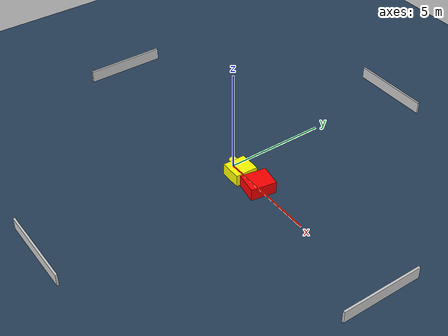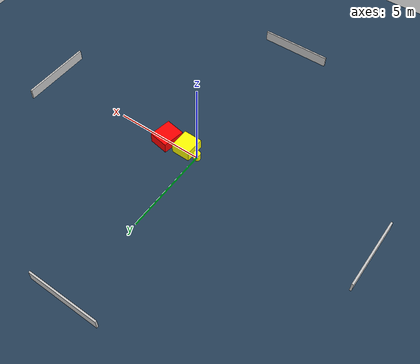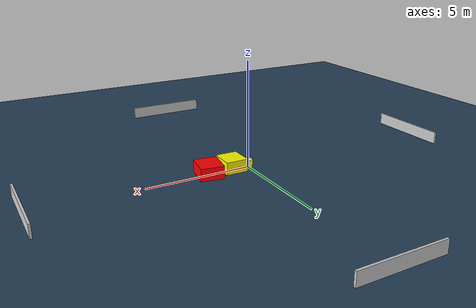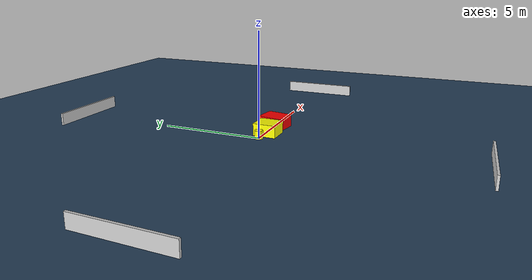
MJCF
<?xml version="1.0" ?>
<mujoco model="generated_environment">
  <option timestep="0.01" integrator="RK4" cone="elliptic"/>
  <default>
    <geom density="1"/>
  </default>
  <asset>
    <texture builtin="gradient" height="3072" name="skybox" rgb1="0.3 0.5 0.7" rgb2="0 0 0" type="skybox" width="512"/>
    <texture builtin="checker" height="300" name="groundplane" rgb1="0.2 0.3 0.4" rgb2="0.1 0.2 0.3" type="2d" width="300"/>
    <material name="groundplane" reflectance="0.2" texrepeat="5 5" texture="groundplane"/>
  </asset>
  <worldbody>
    <light dir="0 0 -1" directional="true" pos="0 0 1.5"/>
    <geom condim="3" friction="0.5 0.005 0.001" material="groundplane" name="floor" pos="0 0 0" size="0 0 0.05" type="plane"/>
    <body name="walls">
      <geom name="wall_1" condim="4" pos="-10.0 0.0 0.3" rgba="0.800000011920929 0.800000011920929 0.800000011920929 1.0" size="0.05 2.0 0.3" type="box"/>
      <geom name="wall_2" condim="4" pos="10.0 0.0 0.3" rgba="0.800000011920929 0.800000011920929 0.800000011920929 1.0" size="0.05 2.0 0.3" type="box"/>
      <geom name="wall_3" condim="4" pos="0.0 -10.0 0.3" rgba="0.800000011920929 0.800000011920929 0.800000011920929 1.0" size="2.0 0.05 0.3" type="box"/>
      <geom name="wall_4" condim="4" pos="0.0 10.0 0.3" rgba="0.800000011920929 0.800000011920929 0.800000011920929 1.0" size="2.0 0.05 0.3" type="box"/>
    </body>
    <body name="robot">
      <joint name="joint_x" type="slide" pos="0 0 0" axis="1 0 0"/>
      <joint name="joint_y" type="slide" pos="0 0 0" axis="0 1 0"/>
      <geom name="robot" type="cylinder" pos="0.0 0.0 0.2" size="0.2 0.2 0.0" mass="5.0" friction="1.0 0.005 0.0001" condim="4" rgba="1.0 1.0 0.0 1.0"/>
    </body>
    <body name="obstacle_1_movable">
      <geom name="obstacle_1_movable" condim="4" pos="0.7791625145589304 -0.15323515127928414 0.3" euler="0 0 89.14383735850168" friction="0.0 0.005 0.001" rgba="1.0 1.0 0.0 1.0" size="0.5586057707389207 0.5219143208899902 0.3" type="box" mass="0.1"/>
      <joint type="free"/>
    </body>
    <body name="obstacle_2_static">
      <geom name="obstacle_2_static" condim="4" pos="1.998886002774235 -0.037695435790765175 0.3" euler="0 0 170.51990344817662" friction="0.0 0.005 0.001" rgba="1.0 0.0 0.0 1.0" size="0.5462463467458469 0.6300674384478789 0.3" type="box"/>
    </body>
  </worldbody>
  <actuator>
    <motor name="actuator_x" joint="joint_x" gear="1" ctrlrange="-1 1"/>
    <motor name="actuator_y" joint="joint_y" gear="1" ctrlrange="-1 1"/>
  </actuator>
</mujoco>
